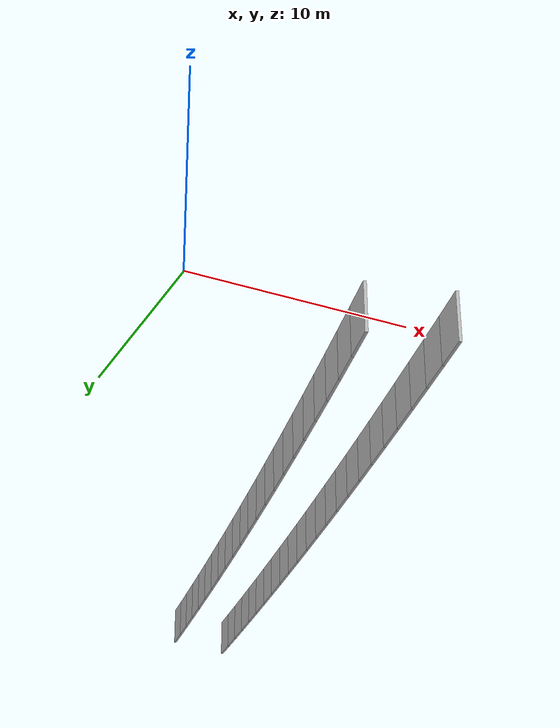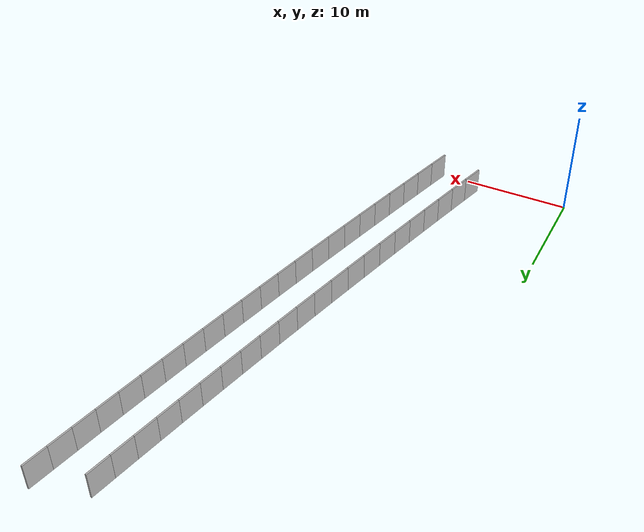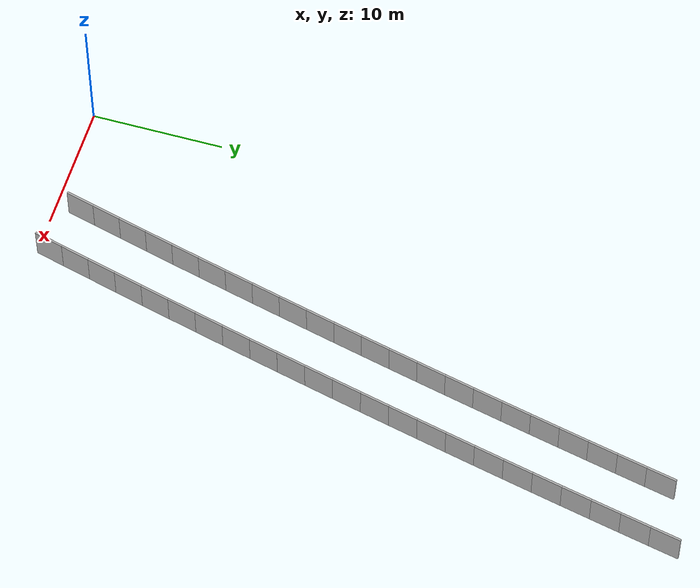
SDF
<?xml version="1.0" ?>
<sdf version="1.6">
  <model name="sps_4620">
    <pose frame="">0 0 0 0 -0 0</pose>
    <static>1</static>
    <self_collide>0</self_collide>
    <allow_auto_disable>0</allow_auto_disable>
    <link name="Wall4442">
      <kinematic>0</kinematic>
      <gravity>1</gravity>
      <self_collide>0</self_collide>
      <collision name="collision">
        <geometry>
          <box>
            <size>2.25451 0.15 2.5</size>
          </box>
        </geometry>
        <pose frame="">0 0 0 0 -0 0</pose>
      </collision>
      <visual name="visual">
        <geometry>
          <box>
            <size>2.25451 0.15 2.5</size>
          </box>
        </geometry>
        <pose frame="">0 0 0 0 -0 0</pose>
        <cast_shadows>1</cast_shadows>
        <transparency>0.0</transparency>
      </visual>
      <pose frame="">13.0137 1.14418 1.25 0 -0 1.32106</pose>
    </link>
    <link name="Wall4443">
      <kinematic>0</kinematic>
      <gravity>1</gravity>
      <self_collide>0</self_collide>
      <collision name="collision">
        <geometry>
          <box>
            <size>2.25465 0.15 2.5</size>
          </box>
        </geometry>
        <pose frame="">0 0 0 0 -0 0</pose>
      </collision>
      <visual name="visual">
        <geometry>
          <box>
            <size>2.25465 0.15 2.5</size>
          </box>
        </geometry>
        <pose frame="">0 0 0 0 -0 0</pose>
        <cast_shadows>1</cast_shadows>
        <transparency>0.0</transparency>
      </visual>
      <pose frame="">13.5683 3.32948 1.25 0 -0 1.32345</pose>
    </link>
    <link name="Wall4444">
      <kinematic>0</kinematic>
      <gravity>1</gravity>
      <self_collide>0</self_collide>
      <collision name="collision">
        <geometry>
          <box>
            <size>2.25473 0.15 2.5</size>
          </box>
        </geometry>
        <pose frame="">0 0 0 0 -0 0</pose>
      </collision>
      <visual name="visual">
        <geometry>
          <box>
            <size>2.25473 0.15 2.5</size>
          </box>
        </geometry>
        <pose frame="">0 0 0 0 -0 0</pose>
        <cast_shadows>1</cast_shadows>
        <transparency>0.0</transparency>
      </visual>
      <pose frame="">14.1178 5.51619 1.25 0 -0 1.32575</pose>
    </link>
    <link name="Wall4445">
      <kinematic>0</kinematic>
      <gravity>1</gravity>
      <self_collide>0</self_collide>
      <collision name="collision">
        <geometry>
          <box>
            <size>2.25462 0.15 2.5</size>
          </box>
        </geometry>
        <pose frame="">0 0 0 0 -0 0</pose>
      </collision>
      <visual name="visual">
        <geometry>
          <box>
            <size>2.25462 0.15 2.5</size>
          </box>
        </geometry>
        <pose frame="">0 0 0 0 -0 0</pose>
        <cast_shadows>1</cast_shadows>
        <transparency>0.0</transparency>
      </visual>
      <pose frame="">14.6621 7.70418 1.25 0 -0 1.32819</pose>
    </link>
    <link name="Wall4446">
      <kinematic>0</kinematic>
      <gravity>1</gravity>
      <self_collide>0</self_collide>
      <collision name="collision">
        <geometry>
          <box>
            <size>2.25455 0.15 2.5</size>
          </box>
        </geometry>
        <pose frame="">0 0 0 0 -0 0</pose>
      </collision>
      <visual name="visual">
        <geometry>
          <box>
            <size>2.25455 0.15 2.5</size>
          </box>
        </geometry>
        <pose frame="">0 0 0 0 -0 0</pose>
        <cast_shadows>1</cast_shadows>
        <transparency>0.0</transparency>
      </visual>
      <pose frame="">15.2011 9.89339 1.25 0 -0 1.33058</pose>
    </link>
    <link name="Wall4447">
      <kinematic>0</kinematic>
      <gravity>1</gravity>
      <self_collide>0</self_collide>
      <collision name="collision">
        <geometry>
          <box>
            <size>2.25445 0.15 2.5</size>
          </box>
        </geometry>
        <pose frame="">0 0 0 0 -0 0</pose>
      </collision>
      <visual name="visual">
        <geometry>
          <box>
            <size>2.25445 0.15 2.5</size>
          </box>
        </geometry>
        <pose frame="">0 0 0 0 -0 0</pose>
        <cast_shadows>1</cast_shadows>
        <transparency>0.0</transparency>
      </visual>
      <pose frame="">15.7349 12.0838 1.25 0 -0 1.33294</pose>
    </link>
    <link name="Wall4448">
      <kinematic>0</kinematic>
      <gravity>1</gravity>
      <self_collide>0</self_collide>
      <collision name="collision">
        <geometry>
          <box>
            <size>2.2547 0.15 2.5</size>
          </box>
        </geometry>
        <pose frame="">0 0 0 0 -0 0</pose>
      </collision>
      <visual name="visual">
        <geometry>
          <box>
            <size>2.2547 0.15 2.5</size>
          </box>
        </geometry>
        <pose frame="">0 0 0 0 -0 0</pose>
        <cast_shadows>1</cast_shadows>
        <transparency>0.0</transparency>
      </visual>
      <pose frame="">16.2635 14.2755 1.25 0 -0 1.33525</pose>
    </link>
    <link name="Wall4449">
      <kinematic>0</kinematic>
      <gravity>1</gravity>
      <self_collide>0</self_collide>
      <collision name="collision">
        <geometry>
          <box>
            <size>2.25462 0.15 2.5</size>
          </box>
        </geometry>
        <pose frame="">0 0 0 0 -0 0</pose>
      </collision>
      <visual name="visual">
        <geometry>
          <box>
            <size>2.25462 0.15 2.5</size>
          </box>
        </geometry>
        <pose frame="">0 0 0 0 -0 0</pose>
        <cast_shadows>1</cast_shadows>
        <transparency>0.0</transparency>
      </visual>
      <pose frame="">16.7871 16.4685 1.25 0 -0 1.33761</pose>
    </link>
    <link name="Wall4450">
      <kinematic>0</kinematic>
      <gravity>1</gravity>
      <self_collide>0</self_collide>
      <collision name="collision">
        <geometry>
          <box>
            <size>2.25466 0.15 2.5</size>
          </box>
        </geometry>
        <pose frame="">0 0 0 0 -0 0</pose>
      </collision>
      <visual name="visual">
        <geometry>
          <box>
            <size>2.25466 0.15 2.5</size>
          </box>
        </geometry>
        <pose frame="">0 0 0 0 -0 0</pose>
        <cast_shadows>1</cast_shadows>
        <transparency>0.0</transparency>
      </visual>
      <pose frame="">17.3054 18.6628 1.25 0 -0 1.34014</pose>
    </link>
    <link name="Wall4451">
      <kinematic>0</kinematic>
      <gravity>1</gravity>
      <self_collide>0</self_collide>
      <collision name="collision">
        <geometry>
          <box>
            <size>2.25461 0.15 2.5</size>
          </box>
        </geometry>
        <pose frame="">0 0 0 0 -0 0</pose>
      </collision>
      <visual name="visual">
        <geometry>
          <box>
            <size>2.25461 0.15 2.5</size>
          </box>
        </geometry>
        <pose frame="">0 0 0 0 -0 0</pose>
        <cast_shadows>1</cast_shadows>
        <transparency>0.0</transparency>
      </visual>
      <pose frame="">17.8184 20.8583 1.25 0 -0 1.34236</pose>
    </link>
    <link name="Wall4452">
      <kinematic>0</kinematic>
      <gravity>1</gravity>
      <self_collide>0</self_collide>
      <collision name="collision">
        <geometry>
          <box>
            <size>2.25455 0.15 2.5</size>
          </box>
        </geometry>
        <pose frame="">0 0 0 0 -0 0</pose>
      </collision>
      <visual name="visual">
        <geometry>
          <box>
            <size>2.25455 0.15 2.5</size>
          </box>
        </geometry>
        <pose frame="">0 0 0 0 -0 0</pose>
        <cast_shadows>1</cast_shadows>
        <transparency>0.0</transparency>
      </visual>
      <pose frame="">18.3263 23.0549 1.25 0 -0 1.34477</pose>
    </link>
    <link name="Wall4453">
      <kinematic>0</kinematic>
      <gravity>1</gravity>
      <self_collide>0</self_collide>
      <collision name="collision">
        <geometry>
          <box>
            <size>2.25445 0.15 2.5</size>
          </box>
        </geometry>
        <pose frame="">0 0 0 0 -0 0</pose>
      </collision>
      <visual name="visual">
        <geometry>
          <box>
            <size>2.25445 0.15 2.5</size>
          </box>
        </geometry>
        <pose frame="">0 0 0 0 -0 0</pose>
        <cast_shadows>1</cast_shadows>
        <transparency>0.0</transparency>
      </visual>
      <pose frame="">18.8288 25.2527 1.25 0 -0 1.34726</pose>
    </link>
    <link name="Wall4454">
      <kinematic>0</kinematic>
      <gravity>1</gravity>
      <self_collide>0</self_collide>
      <collision name="collision">
        <geometry>
          <box>
            <size>2.25479 0.15 2.5</size>
          </box>
        </geometry>
        <pose frame="">0 0 0 0 -0 0</pose>
      </collision>
      <visual name="visual">
        <geometry>
          <box>
            <size>2.25479 0.15 2.5</size>
          </box>
        </geometry>
        <pose frame="">0 0 0 0 -0 0</pose>
        <cast_shadows>1</cast_shadows>
        <transparency>0.0</transparency>
      </visual>
      <pose frame="">19.326 27.4518 1.25 0 -0 1.34955</pose>
    </link>
    <link name="Wall4455">
      <kinematic>0</kinematic>
      <gravity>1</gravity>
      <self_collide>0</self_collide>
      <collision name="collision">
        <geometry>
          <box>
            <size>2.25461 0.15 2.5</size>
          </box>
        </geometry>
        <pose frame="">0 0 0 0 -0 0</pose>
      </collision>
      <visual name="visual">
        <geometry>
          <box>
            <size>2.25461 0.15 2.5</size>
          </box>
        </geometry>
        <pose frame="">0 0 0 0 -0 0</pose>
        <cast_shadows>1</cast_shadows>
        <transparency>0.0</transparency>
      </visual>
      <pose frame="">19.8183 29.6521 1.25 0 -0 1.35189</pose>
    </link>
    <link name="Wall4456">
      <kinematic>0</kinematic>
      <gravity>1</gravity>
      <self_collide>0</self_collide>
      <collision name="collision">
        <geometry>
          <box>
            <size>2.25461 0.15 2.5</size>
          </box>
        </geometry>
        <pose frame="">0 0 0 0 -0 0</pose>
      </collision>
      <visual name="visual">
        <geometry>
          <box>
            <size>2.25461 0.15 2.5</size>
          </box>
        </geometry>
        <pose frame="">0 0 0 0 -0 0</pose>
        <cast_shadows>1</cast_shadows>
        <transparency>0.0</transparency>
      </visual>
      <pose frame="">20.3053 31.8535 1.25 0 -0 1.35427</pose>
    </link>
    <link name="Wall4457">
      <kinematic>0</kinematic>
      <gravity>1</gravity>
      <self_collide>0</self_collide>
      <collision name="collision">
        <geometry>
          <box>
            <size>2.25469 0.15 2.5</size>
          </box>
        </geometry>
        <pose frame="">0 0 0 0 -0 0</pose>
      </collision>
      <visual name="visual">
        <geometry>
          <box>
            <size>2.25469 0.15 2.5</size>
          </box>
        </geometry>
        <pose frame="">0 0 0 0 -0 0</pose>
        <cast_shadows>1</cast_shadows>
        <transparency>0.0</transparency>
      </visual>
      <pose frame="">20.787 34.0561 1.25 0 -0 1.35663</pose>
    </link>
    <link name="Wall4458">
      <kinematic>0</kinematic>
      <gravity>1</gravity>
      <self_collide>0</self_collide>
      <collision name="collision">
        <geometry>
          <box>
            <size>2.25454 0.15 2.5</size>
          </box>
        </geometry>
        <pose frame="">0 0 0 0 -0 0</pose>
      </collision>
      <visual name="visual">
        <geometry>
          <box>
            <size>2.25454 0.15 2.5</size>
          </box>
        </geometry>
        <pose frame="">0 0 0 0 -0 0</pose>
        <cast_shadows>1</cast_shadows>
        <transparency>0.0</transparency>
      </visual>
      <pose frame="">21.2634 36.2598 1.25 0 -0 1.35914</pose>
    </link>
    <link name="Wall4459">
      <kinematic>0</kinematic>
      <gravity>1</gravity>
      <self_collide>0</self_collide>
      <collision name="collision">
        <geometry>
          <box>
            <size>2.25461 0.15 2.5</size>
          </box>
        </geometry>
        <pose frame="">0 0 0 0 -0 0</pose>
      </collision>
      <visual name="visual">
        <geometry>
          <box>
            <size>2.25461 0.15 2.5</size>
          </box>
        </geometry>
        <pose frame="">0 0 0 0 -0 0</pose>
        <cast_shadows>1</cast_shadows>
        <transparency>0.0</transparency>
      </visual>
      <pose frame="">21.7345 38.4646 1.25 0 -0 1.36144</pose>
    </link>
    <link name="Wall4460">
      <kinematic>0</kinematic>
      <gravity>1</gravity>
      <self_collide>0</self_collide>
      <collision name="collision">
        <geometry>
          <box>
            <size>2.25452 0.15 2.5</size>
          </box>
        </geometry>
        <pose frame="">0 0 0 0 -0 0</pose>
      </collision>
      <visual name="visual">
        <geometry>
          <box>
            <size>2.25452 0.15 2.5</size>
          </box>
        </geometry>
        <pose frame="">0 0 0 0 -0 0</pose>
        <cast_shadows>1</cast_shadows>
        <transparency>0.0</transparency>
      </visual>
      <pose frame="">22.2004 40.6705 1.25 0 -0 1.36387</pose>
    </link>
    <link name="Wall4461">
      <kinematic>0</kinematic>
      <gravity>1</gravity>
      <self_collide>0</self_collide>
      <collision name="collision">
        <geometry>
          <box>
            <size>2.25488 0.15 2.5</size>
          </box>
        </geometry>
        <pose frame="">0 0 0 0 -0 0</pose>
      </collision>
      <visual name="visual">
        <geometry>
          <box>
            <size>2.25488 0.15 2.5</size>
          </box>
        </geometry>
        <pose frame="">0 0 0 0 -0 0</pose>
        <cast_shadows>1</cast_shadows>
        <transparency>0.0</transparency>
      </visual>
      <pose frame="">22.6612 42.8776 1.25 0 -0 1.36614</pose>
    </link>
    <link name="Wall4462">
      <kinematic>0</kinematic>
      <gravity>1</gravity>
      <self_collide>0</self_collide>
      <collision name="collision">
        <geometry>
          <box>
            <size>2.25449 0.15 2.5</size>
          </box>
        </geometry>
        <pose frame="">0 0 0 0 -0 0</pose>
      </collision>
      <visual name="visual">
        <geometry>
          <box>
            <size>2.25449 0.15 2.5</size>
          </box>
        </geometry>
        <pose frame="">0 0 0 0 -0 0</pose>
        <cast_shadows>1</cast_shadows>
        <transparency>0.0</transparency>
      </visual>
      <pose frame="">23.1167 45.0858 1.25 0 -0 1.3686</pose>
    </link>
    <link name="Wall4463">
      <kinematic>0</kinematic>
      <gravity>1</gravity>
      <self_collide>0</self_collide>
      <collision name="collision">
        <geometry>
          <box>
            <size>2.25448 0.15 2.5</size>
          </box>
        </geometry>
        <pose frame="">0 0 0 0 -0 0</pose>
      </collision>
      <visual name="visual">
        <geometry>
          <box>
            <size>2.25448 0.15 2.5</size>
          </box>
        </geometry>
        <pose frame="">0 0 0 0 -0 0</pose>
        <cast_shadows>1</cast_shadows>
        <transparency>0.0</transparency>
      </visual>
      <pose frame="">23.5669 47.2949 1.25 0 -0 1.37092</pose>
    </link>
    <link name="Wall4464">
      <kinematic>0</kinematic>
      <gravity>1</gravity>
      <self_collide>0</self_collide>
      <collision name="collision">
        <geometry>
          <box>
            <size>2.25486 0.15 2.5</size>
          </box>
        </geometry>
        <pose frame="">0 0 0 0 -0 0</pose>
      </collision>
      <visual name="visual">
        <geometry>
          <box>
            <size>2.25486 0.15 2.5</size>
          </box>
        </geometry>
        <pose frame="">0 0 0 0 -0 0</pose>
        <cast_shadows>1</cast_shadows>
        <transparency>0.0</transparency>
      </visual>
      <pose frame="">24.012 49.5052 1.25 0 -0 1.37324</pose>
    </link>
    <link name="Wall6167">
      <kinematic>0</kinematic>
      <gravity>1</gravity>
      <self_collide>0</self_collide>
      <collision name="collision">
        <geometry>
          <box>
            <size>2.24463 0.15 2.5</size>
          </box>
        </geometry>
        <pose frame="">0 0 0 0 -0 0</pose>
      </collision>
      <visual name="visual">
        <geometry>
          <box>
            <size>2.24463 0.15 2.5</size>
          </box>
        </geometry>
        <pose frame="">0 0 0 0 -0 0</pose>
        <cast_shadows>1</cast_shadows>
        <transparency>0.0</transparency>
      </visual>
      <pose frame="">9.00265 2.1674 1.25 0 -0 1.32104</pose>
    </link>
    <link name="Wall6168">
      <kinematic>0</kinematic>
      <gravity>1</gravity>
      <self_collide>0</self_collide>
      <collision name="collision">
        <geometry>
          <box>
            <size>2.24494 0.15 2.5</size>
          </box>
        </geometry>
        <pose frame="">0 0 0 0 -0 0</pose>
      </collision>
      <visual name="visual">
        <geometry>
          <box>
            <size>2.24494 0.15 2.5</size>
          </box>
        </geometry>
        <pose frame="">0 0 0 0 -0 0</pose>
        <cast_shadows>1</cast_shadows>
        <transparency>0.0</transparency>
      </visual>
      <pose frame="">9.55495 4.34318 1.25 0 -0 1.32337</pose>
    </link>
    <link name="Wall6169">
      <kinematic>0</kinematic>
      <gravity>1</gravity>
      <self_collide>0</self_collide>
      <collision name="collision">
        <geometry>
          <box>
            <size>2.2448 0.15 2.5</size>
          </box>
        </geometry>
        <pose frame="">0 0 0 0 -0 0</pose>
      </collision>
      <visual name="visual">
        <geometry>
          <box>
            <size>2.2448 0.15 2.5</size>
          </box>
        </geometry>
        <pose frame="">0 0 0 0 -0 0</pose>
        <cast_shadows>1</cast_shadows>
        <transparency>0.0</transparency>
      </visual>
      <pose frame="">10.102 6.52037 1.25 0 -0 1.32585</pose>
    </link>
    <link name="Wall6170">
      <kinematic>0</kinematic>
      <gravity>1</gravity>
      <self_collide>0</self_collide>
      <collision name="collision">
        <geometry>
          <box>
            <size>2.24479 0.15 2.5</size>
          </box>
        </geometry>
        <pose frame="">0 0 0 0 -0 0</pose>
      </collision>
      <visual name="visual">
        <geometry>
          <box>
            <size>2.24479 0.15 2.5</size>
          </box>
        </geometry>
        <pose frame="">0 0 0 0 -0 0</pose>
        <cast_shadows>1</cast_shadows>
        <transparency>0.0</transparency>
      </visual>
      <pose frame="">10.6439 8.69878 1.25 0 -0 1.32812</pose>
    </link>
    <link name="Wall6171">
      <kinematic>0</kinematic>
      <gravity>1</gravity>
      <self_collide>0</self_collide>
      <collision name="collision">
        <geometry>
          <box>
            <size>2.24472 0.15 2.5</size>
          </box>
        </geometry>
        <pose frame="">0 0 0 0 -0 0</pose>
      </collision>
      <visual name="visual">
        <geometry>
          <box>
            <size>2.24472 0.15 2.5</size>
          </box>
        </geometry>
        <pose frame="">0 0 0 0 -0 0</pose>
        <cast_shadows>1</cast_shadows>
        <transparency>0.0</transparency>
      </visual>
      <pose frame="">11.1807 10.8784 1.25 0 -0 1.33052</pose>
    </link>
    <link name="Wall6172">
      <kinematic>0</kinematic>
      <gravity>1</gravity>
      <self_collide>0</self_collide>
      <collision name="collision">
        <geometry>
          <box>
            <size>2.2448 0.15 2.5</size>
          </box>
        </geometry>
        <pose frame="">0 0 0 0 -0 0</pose>
      </collision>
      <visual name="visual">
        <geometry>
          <box>
            <size>2.2448 0.15 2.5</size>
          </box>
        </geometry>
        <pose frame="">0 0 0 0 -0 0</pose>
        <cast_shadows>1</cast_shadows>
        <transparency>0.0</transparency>
      </visual>
      <pose frame="">11.7123 13.0593 1.25 0 -0 1.33291</pose>
    </link>
    <link name="Wall6173">
      <kinematic>0</kinematic>
      <gravity>1</gravity>
      <self_collide>0</self_collide>
      <collision name="collision">
        <geometry>
          <box>
            <size>2.24477 0.15 2.5</size>
          </box>
        </geometry>
        <pose frame="">0 0 0 0 -0 0</pose>
      </collision>
      <visual name="visual">
        <geometry>
          <box>
            <size>2.24477 0.15 2.5</size>
          </box>
        </geometry>
        <pose frame="">0 0 0 0 -0 0</pose>
        <cast_shadows>1</cast_shadows>
        <transparency>0.0</transparency>
      </visual>
      <pose frame="">12.2387 15.2415 1.25 0 -0 1.33528</pose>
    </link>
    <link name="Wall6174">
      <kinematic>0</kinematic>
      <gravity>1</gravity>
      <self_collide>0</self_collide>
      <collision name="collision">
        <geometry>
          <box>
            <size>2.24471 0.15 2.5</size>
          </box>
        </geometry>
        <pose frame="">0 0 0 0 -0 0</pose>
      </collision>
      <visual name="visual">
        <geometry>
          <box>
            <size>2.24471 0.15 2.5</size>
          </box>
        </geometry>
        <pose frame="">0 0 0 0 -0 0</pose>
        <cast_shadows>1</cast_shadows>
        <transparency>0.0</transparency>
      </visual>
      <pose frame="">12.7598 17.4249 1.25 0 -0 1.33773</pose>
    </link>
    <link name="Wall6175">
      <kinematic>0</kinematic>
      <gravity>1</gravity>
      <self_collide>0</self_collide>
      <collision name="collision">
        <geometry>
          <box>
            <size>2.24481 0.15 2.5</size>
          </box>
        </geometry>
        <pose frame="">0 0 0 0 -0 0</pose>
      </collision>
      <visual name="visual">
        <geometry>
          <box>
            <size>2.24481 0.15 2.5</size>
          </box>
        </geometry>
        <pose frame="">0 0 0 0 -0 0</pose>
        <cast_shadows>1</cast_shadows>
        <transparency>0.0</transparency>
      </visual>
      <pose frame="">13.2757 19.6096 1.25 0 -0 1.34015</pose>
    </link>
    <link name="Wall6176">
      <kinematic>0</kinematic>
      <gravity>1</gravity>
      <self_collide>0</self_collide>
      <collision name="collision">
        <geometry>
          <box>
            <size>2.24474 0.15 2.5</size>
          </box>
        </geometry>
        <pose frame="">0 0 0 0 -0 0</pose>
      </collision>
      <visual name="visual">
        <geometry>
          <box>
            <size>2.24474 0.15 2.5</size>
          </box>
        </geometry>
        <pose frame="">0 0 0 0 -0 0</pose>
        <cast_shadows>1</cast_shadows>
        <transparency>0.0</transparency>
      </visual>
      <pose frame="">13.7865 21.7955 1.25 0 -0 1.34232</pose>
    </link>
    <link name="Wall6177">
      <kinematic>0</kinematic>
      <gravity>1</gravity>
      <self_collide>0</self_collide>
      <collision name="collision">
        <geometry>
          <box>
            <size>2.24466 0.15 2.5</size>
          </box>
        </geometry>
        <pose frame="">0 0 0 0 -0 0</pose>
      </collision>
      <visual name="visual">
        <geometry>
          <box>
            <size>2.24466 0.15 2.5</size>
          </box>
        </geometry>
        <pose frame="">0 0 0 0 -0 0</pose>
        <cast_shadows>1</cast_shadows>
        <transparency>0.0</transparency>
      </visual>
      <pose frame="">14.2921 23.9825 1.25 0 -0 1.34488</pose>
    </link>
    <link name="Wall6178">
      <kinematic>0</kinematic>
      <gravity>1</gravity>
      <self_collide>0</self_collide>
      <collision name="collision">
        <geometry>
          <box>
            <size>2.2449 0.15 2.5</size>
          </box>
        </geometry>
        <pose frame="">0 0 0 0 -0 0</pose>
      </collision>
      <visual name="visual">
        <geometry>
          <box>
            <size>2.2449 0.15 2.5</size>
          </box>
        </geometry>
        <pose frame="">0 0 0 0 -0 0</pose>
        <cast_shadows>1</cast_shadows>
        <transparency>0.0</transparency>
      </visual>
      <pose frame="">14.7925 26.1708 1.25 0 -0 1.34711</pose>
    </link>
    <link name="Wall6179">
      <kinematic>0</kinematic>
      <gravity>1</gravity>
      <self_collide>0</self_collide>
      <collision name="collision">
        <geometry>
          <box>
            <size>2.24472 0.15 2.5</size>
          </box>
        </geometry>
        <pose frame="">0 0 0 0 -0 0</pose>
      </collision>
      <visual name="visual">
        <geometry>
          <box>
            <size>2.24472 0.15 2.5</size>
          </box>
        </geometry>
        <pose frame="">0 0 0 0 -0 0</pose>
        <cast_shadows>1</cast_shadows>
        <transparency>0.0</transparency>
      </visual>
      <pose frame="">15.2878 28.3603 1.25 0 -0 1.34954</pose>
    </link>
    <link name="Wall6180">
      <kinematic>0</kinematic>
      <gravity>1</gravity>
      <self_collide>0</self_collide>
      <collision name="collision">
        <geometry>
          <box>
            <size>2.24495 0.15 2.5</size>
          </box>
        </geometry>
        <pose frame="">0 0 0 0 -0 0</pose>
      </collision>
      <visual name="visual">
        <geometry>
          <box>
            <size>2.24495 0.15 2.5</size>
          </box>
        </geometry>
        <pose frame="">0 0 0 0 -0 0</pose>
        <cast_shadows>1</cast_shadows>
        <transparency>0.0</transparency>
      </visual>
      <pose frame="">15.7778 30.551 1.25 0 -0 1.35196</pose>
    </link>
    <link name="Wall6181">
      <kinematic>0</kinematic>
      <gravity>1</gravity>
      <self_collide>0</self_collide>
      <collision name="collision">
        <geometry>
          <box>
            <size>2.24479 0.15 2.5</size>
          </box>
        </geometry>
        <pose frame="">0 0 0 0 -0 0</pose>
      </collision>
      <visual name="visual">
        <geometry>
          <box>
            <size>2.24479 0.15 2.5</size>
          </box>
        </geometry>
        <pose frame="">0 0 0 0 -0 0</pose>
        <cast_shadows>1</cast_shadows>
        <transparency>0.0</transparency>
      </visual>
      <pose frame="">16.2626 32.7429 1.25 0 -0 1.35428</pose>
    </link>
    <link name="Wall6182">
      <kinematic>0</kinematic>
      <gravity>1</gravity>
      <self_collide>0</self_collide>
      <collision name="collision">
        <geometry>
          <box>
            <size>2.24463 0.15 2.5</size>
          </box>
        </geometry>
        <pose frame="">0 0 0 0 -0 0</pose>
      </collision>
      <visual name="visual">
        <geometry>
          <box>
            <size>2.24463 0.15 2.5</size>
          </box>
        </geometry>
        <pose frame="">0 0 0 0 -0 0</pose>
        <cast_shadows>1</cast_shadows>
        <transparency>0.0</transparency>
      </visual>
      <pose frame="">16.7421 34.9358 1.25 0 -0 1.35677</pose>
    </link>
    <link name="Wall6183">
      <kinematic>0</kinematic>
      <gravity>1</gravity>
      <self_collide>0</self_collide>
      <collision name="collision">
        <geometry>
          <box>
            <size>2.24496 0.15 2.5</size>
          </box>
        </geometry>
        <pose frame="">0 0 0 0 -0 0</pose>
      </collision>
      <visual name="visual">
        <geometry>
          <box>
            <size>2.24496 0.15 2.5</size>
          </box>
        </geometry>
        <pose frame="">0 0 0 0 -0 0</pose>
        <cast_shadows>1</cast_shadows>
        <transparency>0.0</transparency>
      </visual>
      <pose frame="">17.2163 37.1299 1.25 0 -0 1.35906</pose>
    </link>
    <link name="Wall6184">
      <kinematic>0</kinematic>
      <gravity>1</gravity>
      <self_collide>0</self_collide>
      <collision name="collision">
        <geometry>
          <box>
            <size>2.24459 0.15 2.5</size>
          </box>
        </geometry>
        <pose frame="">0 0 0 0 -0 0</pose>
      </collision>
      <visual name="visual">
        <geometry>
          <box>
            <size>2.24459 0.15 2.5</size>
          </box>
        </geometry>
        <pose frame="">0 0 0 0 -0 0</pose>
        <cast_shadows>1</cast_shadows>
        <transparency>0.0</transparency>
      </visual>
      <pose frame="">17.6855 39.3251 1.25 0 -0 1.36139</pose>
    </link>
    <link name="Wall6185">
      <kinematic>0</kinematic>
      <gravity>1</gravity>
      <self_collide>0</self_collide>
      <collision name="collision">
        <geometry>
          <box>
            <size>2.24472 0.15 2.5</size>
          </box>
        </geometry>
        <pose frame="">0 0 0 0 -0 0</pose>
      </collision>
      <visual name="visual">
        <geometry>
          <box>
            <size>2.24472 0.15 2.5</size>
          </box>
        </geometry>
        <pose frame="">0 0 0 0 -0 0</pose>
        <cast_shadows>1</cast_shadows>
        <transparency>0.0</transparency>
      </visual>
      <pose frame="">18.1494 41.5213 1.25 0 -0 1.36387</pose>
    </link>
    <link name="Wall6186">
      <kinematic>0</kinematic>
      <gravity>1</gravity>
      <self_collide>0</self_collide>
      <collision name="collision">
        <geometry>
          <box>
            <size>2.24507 0.15 2.5</size>
          </box>
        </geometry>
        <pose frame="">0 0 0 0 -0 0</pose>
      </collision>
      <visual name="visual">
        <geometry>
          <box>
            <size>2.24507 0.15 2.5</size>
          </box>
        </geometry>
        <pose frame="">0 0 0 0 -0 0</pose>
        <cast_shadows>1</cast_shadows>
        <transparency>0.0</transparency>
      </visual>
      <pose frame="">18.6082 43.7188 1.25 0 -0 1.36607</pose>
    </link>
    <link name="Wall6187">
      <kinematic>0</kinematic>
      <gravity>1</gravity>
      <self_collide>0</self_collide>
      <collision name="collision">
        <geometry>
          <box>
            <size>2.24449 0.15 2.5</size>
          </box>
        </geometry>
        <pose frame="">0 0 0 0 -0 0</pose>
      </collision>
      <visual name="visual">
        <geometry>
          <box>
            <size>2.24449 0.15 2.5</size>
          </box>
        </geometry>
        <pose frame="">0 0 0 0 -0 0</pose>
        <cast_shadows>1</cast_shadows>
        <transparency>0.0</transparency>
      </visual>
      <pose frame="">19.0618 45.9173 1.25 0 -0 1.36865</pose>
    </link>
    <link name="Wall6188">
      <kinematic>0</kinematic>
      <gravity>1</gravity>
      <self_collide>0</self_collide>
      <collision name="collision">
        <geometry>
          <box>
            <size>2.2449 0.15 2.5</size>
          </box>
        </geometry>
        <pose frame="">0 0 0 0 -0 0</pose>
      </collision>
      <visual name="visual">
        <geometry>
          <box>
            <size>2.2449 0.15 2.5</size>
          </box>
        </geometry>
        <pose frame="">0 0 0 0 -0 0</pose>
        <cast_shadows>1</cast_shadows>
        <transparency>0.0</transparency>
      </visual>
      <pose frame="">19.51 48.1168 1.25 0 -0 1.37088</pose>
    </link>
  </model>
</sdf>
